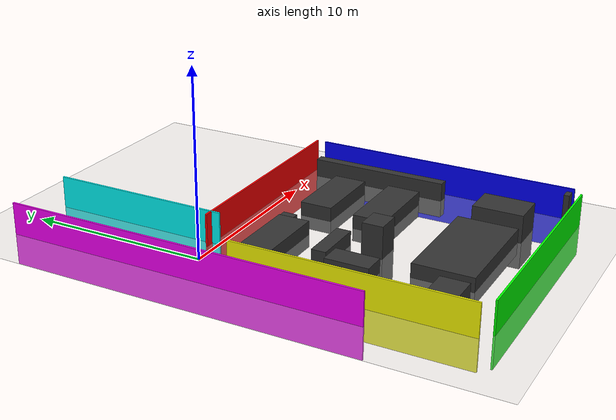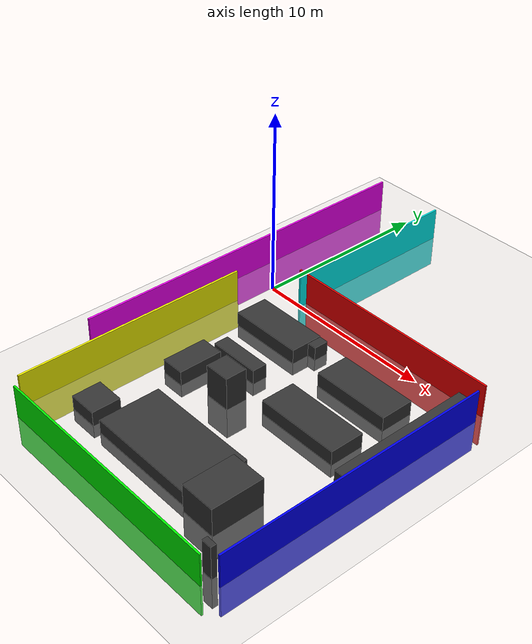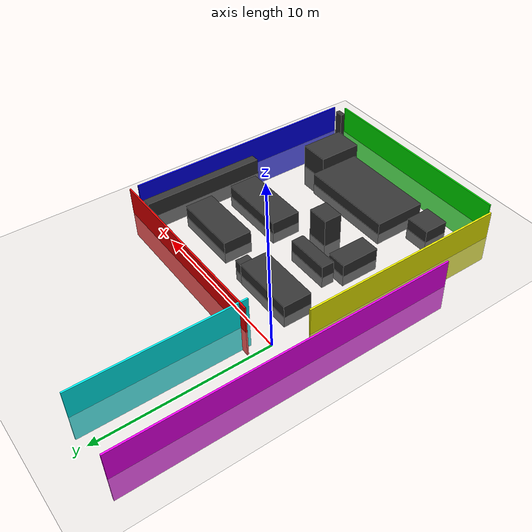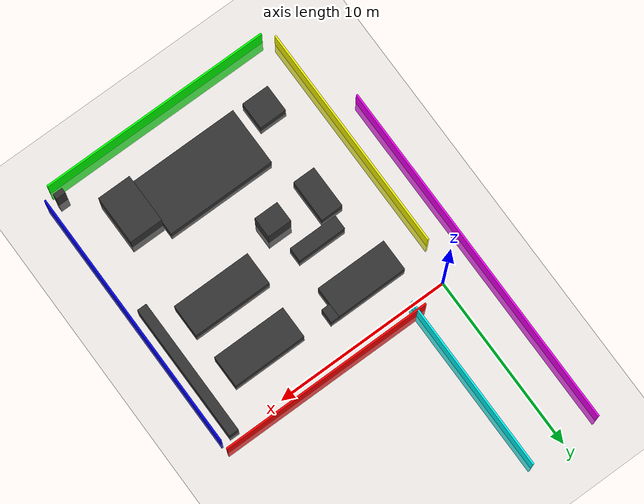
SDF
<?xml version="1.0"?>
<sdf version="1.6">
	<world name="ros_ign_tutorial">

		<physics name="10ms" type="ignored">
			<max_step_size>0.01</max_step_size>
			<real_time_factor>1.0</real_time_factor>
		</physics>
		<plugin filename="ignition-gazebo-physics-system" name="ignition::gazebo::systems::Physics"></plugin>
		<plugin filename="ignition-gazebo-user-commands-system" name="ignition::gazebo::systems::UserCommands"></plugin>
		<plugin filename="ignition-gazebo-scene-broadcaster-system" name="ignition::gazebo::systems::SceneBroadcaster"></plugin>
		<plugin filename="ignition-gazebo-sensors-system" name="ignition::gazebo::systems::Sensors">
			<render_engine>ogre2</render_engine>
		</plugin>

		<gui fullscreen="0">

			<!-- 3D scene -->
			<plugin filename="GzScene3D" name="3D View">
				<ignition-gui>
					<title>3D View</title>
					<property type="bool" key="showTitleBar">false</property>
					<property type="string" key="state">docked</property>
				</ignition-gui>

				<engine>ogre2</engine>
				<scene>scene</scene>
				<ambient_light>0.4 0.4 0.4</ambient_light>
				<background_color>0.8 0.8 0.8</background_color>
				<camera_pose>-6 0 6 0 0.5 0</camera_pose>
			</plugin>

			<!-- Play / pause / step -->
			<plugin filename="WorldControl" name="World control">
				<ignition-gui>
					<title>World control</title>
					<property type="bool" key="showTitleBar">false</property>
					<property type="bool" key="resizable">false</property>
					<property type="double" key="height">72</property>
					<property type="double" key="width">121</property>
					<property type="double" key="z">1</property>

					<property type="string" key="state">floating</property>
					<anchors target="3D View">
						<line own="left" target="left" />
						<line own="bottom" target="bottom" />
					</anchors>
				</ignition-gui>

				<play_pause>true</play_pause>
				<step>true</step>
				<start_paused>true</start_paused>

			</plugin>

			<!-- Time / RTF -->
			<plugin filename="WorldStats" name="World stats">
				<ignition-gui>
					<title>World stats</title>
					<property type="bool" key="showTitleBar">false</property>
					<property type="bool" key="resizable">false</property>
					<property type="double" key="height">110</property>
					<property type="double" key="width">290</property>
					<property type="double" key="z">1</property>

					<property type="string" key="state">floating</property>
					<anchors target="3D View">
						<line own="right" target="right" />
						<line own="bottom" target="bottom" />
					</anchors>
				</ignition-gui>

				<sim_time>true</sim_time>
				<real_time>true</real_time>
				<real_time_factor>true</real_time_factor>
				<iterations>true</iterations>

			</plugin>

			<plugin filename="ImageDisplay" name="Image Display">
				<ignition-gui>
					<property key="state" type="string">docked</property>
				</ignition-gui>
			</plugin>
		</gui>

		<light type="directional" name="sun">
			<cast_shadows>true</cast_shadows>
			<pose>0 0 10 0 0 0</pose>
			<diffuse>1 1 1 1</diffuse>
			<specular>0.5 0.5 0.5 1</specular>
			<attenuation>
				<range>1000</range>
				<constant>0.9</constant>
				<linear>0.01</linear>
				<quadratic>0.001</quadratic>
			</attenuation>
			<direction>-0.5 0.1 -0.9</direction>
		</light>

		<model name="ground_plane">
			<static>true</static>
			<link name="link">
				<collision name="collision">
					<geometry>
						<plane>
							<normal>0 0 1</normal>
						</plane>
					</geometry>
					<surface>
						<friction>
							<ode>
								<mu>10.0</mu>
								<mu2>10.0</mu2>
							</ode>
						</friction>
					</surface>
				</collision>
				<visual name="visual">
					<geometry>
						<plane>
							<normal>0 0 1</normal>
							<size>100 100</size>
						</plane>
					</geometry>
					<material>
						<ambient>0.8 0.8 0.8 1</ambient>
						<diffuse>0.8 0.8 0.8 1</diffuse>
						<specular>0.8 0.8 0.8 1</specular>
					</material>
				</visual>
			</link>
		</model>

		<model name='wall'>
    			<static>true</static>
    			<pose>6.575 -15.34 0 0 0 0</pose><!--pose relative to the world-->
    			<link name='box'>
        			<pose/>
        			<visual name='visual'>
            				<geometry>
                				<box>
                    					<size>13.15 0.1 3.5</size>
                				</box>
            				</geometry>
            				<!--let's add color to our link-->
            				<material>
                				<ambient>0.0 1.0 0.0 1</ambient>
                				<diffuse>0.0 1.0 0.0 1</diffuse>
                				<specular>0.0 1.0 0.0 1</specular>
            				</material>
        			</visual>
        			<collision name='collision'>
            				<geometry>
                				<box>
                    					<size>13.15 0.1 3.5</size>
                				</box>
            				</geometry>
        			</collision>
    			</link>
		</model>

		<model name='wall2'>
    			<static>true</static>
    			<pose>13.65 -7.42 0 0 0 0</pose><!--pose relative to the world-->
    			<link name='box'>
        			<pose/>
        			<visual name='visual'>
            				<geometry>
                				<box>
                    					<size>0.1 14.84 3.5</size>
                				</box>
            				</geometry>
            				<!--let's add color to our link-->
            				<material>
                				<ambient>0.0 0.0 1.0 1</ambient>
                				<diffuse>0.0 0.0 1.0 1</diffuse>
                				<specular>0.0 0.0 1.0 1</specular>
            				</material>
        			</visual>
        			<collision name='collision'>
            				<geometry>
                				<box>
                    					<size>0.1 14.84 3.5</size>
                				</box>
            				</geometry>
        			</collision>
    			</link>
		</model>

		<model name='wall3'>
    			<static>true</static>
    			<pose>7.575 0.5 0 0 0 0</pose><!--pose relative to the world-->
    			<link name='box'>
        			<pose/>
        			<visual name='visual'>
            				<geometry>
                				<box>
                    					<size>12.15 0.1 3.5</size>
                				</box>
            				</geometry>
            				<!--let's add color to our link-->
            				<material>
                				<ambient>1.0 0.0 0.0 1</ambient>
                				<diffuse>1.0 0.0 0.0 1</diffuse>
                				<specular>1.0 0.0 0.0 1</specular>
            				</material>
        			</visual>
        			<collision name='collision'>
            				<geometry>
                				<box>
                    					<size>12.15 0.1 3.5</size>
                				</box>
            				</geometry>
        			</collision>
    			</link>
		</model>

		<model name='wall4'>
    			<static>true</static>
    			<pose>-0.5 -8.42 0.0 0 0 0</pose><!--pose relative to the world-->
    			<link name='box'>
        			<pose/>
        			<visual name='visual'>
            				<geometry>
                				<box>
                    					<size>0.1 12.84 3.5</size>
                				</box>
            				</geometry>
            				<!--let's add color to our link-->
            				<material>
                				<ambient>1.0 1.0 0.0 1</ambient>
                				<diffuse>1.0 1.0 0.0 1</diffuse>
                				<specular>1.0 1.0 0.0 1</specular>
            				</material>
        			</visual>
        			<collision name='collision'>
            				<geometry>
                				<box>
                    					<size>0.1 12.84 3.5</size>
                				</box>
            				</geometry>
        			</collision>
    			</link>
		</model>

		<model name='wall5'>
    			<static>true</static>
    			<pose>-2 0 0 0 0 0</pose><!--pose relative to the world-->
    			<link name='box'>
        			<pose/>
        			<visual name='visual'>
            				<geometry>
                				<box>
                    					<size>0.1 20.0 3.5</size>
                				</box>
            				</geometry>
            				<!--let's add color to our link-->
            				<material>
                				<ambient>1 0 1 1</ambient>
                				<diffuse>1 0 1 1</diffuse>
                				<specular>1 0 1 1</specular>
            				</material>
        			</visual>
        			<collision name='collision'>
            				<geometry>
                				<box>
                    					<size>0.1 20.0 3.5</size>
                				</box>
            				</geometry>
        			</collision>
    			</link>
		</model>

		<model name='wall6'>
    			<static>true</static>
    			<pose>2 5 0 0 0 0</pose><!--pose relative to the world-->
    			<link name='box'>
        			<pose/>
        			<visual name='visual'>
            				<geometry>
                				<box>
                    					<size>0.1 10 3.5</size>
                				</box>
            				</geometry>
            				<!--let's add color to our link-->
            				<material>
                				<ambient>0 1 1 1</ambient>
                				<diffuse>0 1 1 1</diffuse>
                				<specular>0 1 1 1</specular>
            				</material>
        			</visual>
        			<collision name='collision'>
            				<geometry>
                				<box>
                    					<size>0.1 10 3.5</size>
                				</box>
            				</geometry>
        			</collision>
    			</link>
		</model>

		<model name='obst2'>
    			<static>true</static>
    			<pose>3.222 -2.5045 0 0 0 0</pose><!--pose relative to the world-->
    			<link name='box'>
        			<pose/>
        			<visual name='visual'>
            				<geometry>
                				<box>
                    					<size>4.054 1.767 1.5</size>
                				</box>
            				</geometry>
            				<!--let's add color to our link-->
            				<material>
                				<ambient>0.2 0.2 0.2 1</ambient>
                				<diffuse>0.2 0.2 0.2 1</diffuse>
                				<specular>0.2 0.2 0.2 1</specular>
            				</material>
        			</visual>
        			<collision name='collision'>
            				<geometry>
                				<box>
                    					<size>4.054 1.767 1.5</size>
                				</box>
            				</geometry>
        			</collision>
    			</link>
		</model>

		<model name='obst3'>
    			<static>true</static>
    			<pose>2.435 -7.236 0 0 0 0</pose><!--pose relative to the world-->
    			<link name='box'>
        			<pose/>
        			<visual name='visual'>
            				<geometry>
                				<box>
                    					<size>1.271 2.4 1.5</size>
                				</box>
            				</geometry>
            				<!--let's add color to our link-->
            				<material>
                				<ambient>0.2 0.2 0.2 1</ambient>
                				<diffuse>0.2 0.2 0.2 1</diffuse>
                				<specular>0.2 0.2 0.2 1</specular>
            				</material>
        			</visual>
        			<collision name='collision'>
            				<geometry>
                				<box>
                    					<size>1.271 2.4 1.5</size>
                				</box>
            				</geometry>
        			</collision>
    			</link>
		</model>

		<model name='obst4'>
    			<static>true</static>
    			<pose>3.781 -5.434 0 0 0 0</pose><!--pose relative to the world-->
    			<link name='box'>
        			<pose/>
        			<visual name='visual'>
            				<geometry>
                				<box>
                    					<size>2.8 0.8 1.5</size>
                				</box>
            				</geometry>
            				<!--let's add color to our link-->
            				<material>
                				<ambient>0.2 0.2 0.2 1</ambient>
                				<diffuse>0.2 0.2 0.2 1</diffuse>
                				<specular>0.2 0.2 0.2 1</specular>
            				</material>
        			</visual>
        			<collision name='collision'>
            				<geometry>
                				<box>
                    					<size>2.8 0.8 1.5</size>
                				</box>
            				</geometry>
        			</collision>
    			</link>
		</model>

		<model name='obst5'>
    			<static>true</static>
    			<pose>5.109 -7.366 0 0 0 0</pose><!--pose relative to the world-->
    			<link name='box'>
        			<pose/>
        			<visual name='visual'>
            				<geometry>
                				<box>
                    					<size>1.382 1.154 3.5</size>
                				</box>
            				</geometry>
            				<!--let's add color to our link-->
            				<material>
                				<ambient>0.2 0.2 0.2 1</ambient>
                				<diffuse>0.2 0.2 0.2 1</diffuse>
                				<specular>0.2 0.2 0.2 1</specular>
            				</material>
        			</visual>
        			<collision name='collision'>
            				<geometry>
                				<box>
                    					<size>1.382 1.154 3.5</size>
                				</box>
            				</geometry>
        			</collision>
    			</link>
		</model>

		<model name='obst6'>
    			<static>true</static>
    			<pose>9.29 -5.96 0 0 0 0</pose><!--pose relative to the world-->
    			<link name='box'>
        			<pose/>
        			<visual name='visual'>
            				<geometry>
                				<box>
                    					<size>4.496 1.848 1.5</size>
                				</box>
            				</geometry>
            				<!--let's add color to our link-->
            				<material>
                				<ambient>0.2 0.2 0.2 1</ambient>
                				<diffuse>0.2 0.2 0.2 1</diffuse>
                				<specular>0.2 0.2 0.2 1</specular>
            				</material>
        			</visual>
        			<collision name='collision'>
            				<geometry>
                				<box>
                    					<size>4.496 1.848 1.5</size>
                				</box>
            				</geometry>
        			</collision>
    			</link>
		</model>

		<model name='obst7'>
    			<static>true</static>
    			<pose>9.33 -2.74 0 0 0 0</pose><!--pose relative to the world-->
    			<link name='box'>
        			<pose/>
        			<visual name='visual'>
            				<geometry>
                				<box>
                    					<size>4.2 1.8 1.5</size>
                				</box>
            				</geometry>
            				<!--let's add color to our link-->
            				<material>
                				<ambient>0.2 0.2 0.2 1</ambient>
                				<diffuse>0.2 0.2 0.2 1</diffuse>
                				<specular>0.2 0.2 0.2 1</specular>
            				</material>
        			</visual>
        			<collision name='collision'>
            				<geometry>
                				<box>
                    					<size>4.2 1.8 1.5</size>
                				</box>
            				</geometry>
        			</collision>
    			</link>
		</model>

		<model name='obst9'>
    			<static>true</static>
    			<pose>5.49 -2.02 0 0 0 0</pose><!--pose relative to the world-->
    			<link name='box'>
        			<pose/>
        			<visual name='visual'>
            				<geometry>
                				<box>
                    					<size>0.5 0.8 1.4</size>
                				</box>
            				</geometry>
            				<!--let's add color to our link-->
            				<material>
                				<ambient>0.2 0.2 0.2 1</ambient>
                				<diffuse>0.2 0.2 0.2 1</diffuse>
                				<specular>0.2 0.2 0.2 1</specular>
            				</material>
        			</visual>
        			<collision name='collision'>
            				<geometry>
                				<box>
                    					<size>0.5 0.8 1.4</size>
                				</box>
            				</geometry>
        			</collision>
    			</link>
		</model>

		<model name='obst10'>
    			<static>true</static>
    			<pose>12.87 -3.88 0 0 0 0</pose><!--pose relative to the world-->
    			<link name='box'>
        			<pose/>
        			<visual name='visual'>
            				<geometry>
                				<box>
                    					<size>0.55 7.77 2.0</size>
                				</box>
            				</geometry>
            				<!--let's add color to our link-->
            				<material>
                				<ambient>0.2 0.2 0.2 1</ambient>
                				<diffuse>0.2 0.2 0.2 1</diffuse>
                				<specular>0.2 0.2 0.2 1</specular>
            				</material>
        			</visual>
        			<collision name='collision'>
            				<geometry>
                				<box>
                    					<size>0.55 7.77 2.0</size>
                				</box>
            				</geometry>
        			</collision>
    			</link>
		</model>

		<model name='obst11'>
    			<static>true</static>
    			<pose>10.49 -12.02 0 0 0 0</pose><!--pose relative to the world-->
    			<link name='box'>
        			<pose/>
        			<visual name='visual'>
            				<geometry>
                				<box>
                    					<size>1.9 2.752 3.0</size>
                				</box>
            				</geometry>
            				<!--let's add color to our link-->
            				<material>
                				<ambient>0.2 0.2 0.2 1</ambient>
                				<diffuse>0.2 0.2 0.2 1</diffuse>
                				<specular>0.2 0.2 0.2 1</specular>
            				</material>
        			</visual>
        			<collision name='collision'>
            				<geometry>
                				<box>
                    					<size>1.9 2.752 3.0</size>
                				</box>
            				</geometry>
        			</collision>
    			</link>
		</model>

		<model name='obst12'>
    			<static>true</static>
    			<pose>6.44 -11.56 0 0 0 0</pose><!--pose relative to the world-->
    			<link name='box'>
        			<pose/>
        			<visual name='visual'>
            				<geometry>
                				<box>
                    					<size>6.195 3.275 1.5</size>
                				</box>
            				</geometry>
            				<!--let's add color to our link-->
            				<material>
                				<ambient>0.2 0.2 0.2 1</ambient>
                				<diffuse>0.2 0.2 0.2 1</diffuse>
                				<specular>0.2 0.2 0.2 1</specular>
            				</material>
        			</visual>
        			<collision name='collision'>
            				<geometry>
                				<box>
                    			  <size>6.195 3.275 1.5</size>
                				</box>
            				</geometry>
        			</collision>
    			</link>
		</model>

		<model name='obst14'>
    			<static>true</static>
    			<pose>1.985 -12.41 0 0 0 0</pose><!--pose relative to the world-->
    			<link name='box'>
        			<pose/>
        			<visual name='visual'>
            				<geometry>
                				<box>
                    					<size>1.56 1.54 1.5</size>
                				</box>
            				</geometry>
            				<!--let's add color to our link-->
            				<material>
                				<ambient>0.2 0.2 0.2 1</ambient>
                				<diffuse>0.2 0.2 0.2 1</diffuse>
                				<specular>0.2 0.2 0.2 1</specular>
            				</material>
        			</visual>
        			<collision name='collision'>
            				<geometry>
                				<box>
                    					<size>1.56 1.54 1.5</size>
                				</box>
            				</geometry>
        			</collision>
    			</link>
		</model>

		<model name='obst18'>
    			<static>true</static>
    			<pose>12.88 -14.69 0 0 0 0</pose><!--pose relative to the world-->
    			<link name='box'>
        			<pose/>
        			<visual name='visual'>
            				<geometry>
                				<box>
                    					<size>0.55 0.294 3.5</size>
                				</box>
            				</geometry>
            				<!--let's add color to our link-->
            				<material>
                				<ambient>0.2 0.2 0.2 1</ambient>
                				<diffuse>0.2 0.2 0.2 1</diffuse>
                				<specular>0.2 0.2 0.2 1</specular>
            				</material>
        			</visual>
        			<collision name='collision'>
            				<geometry>
                				<box>
                    					<size>0.55 0.294 3.5</size>
                				</box>
            				</geometry>
        			</collision>
    			</link>
		</model>

	</world>
</sdf>
